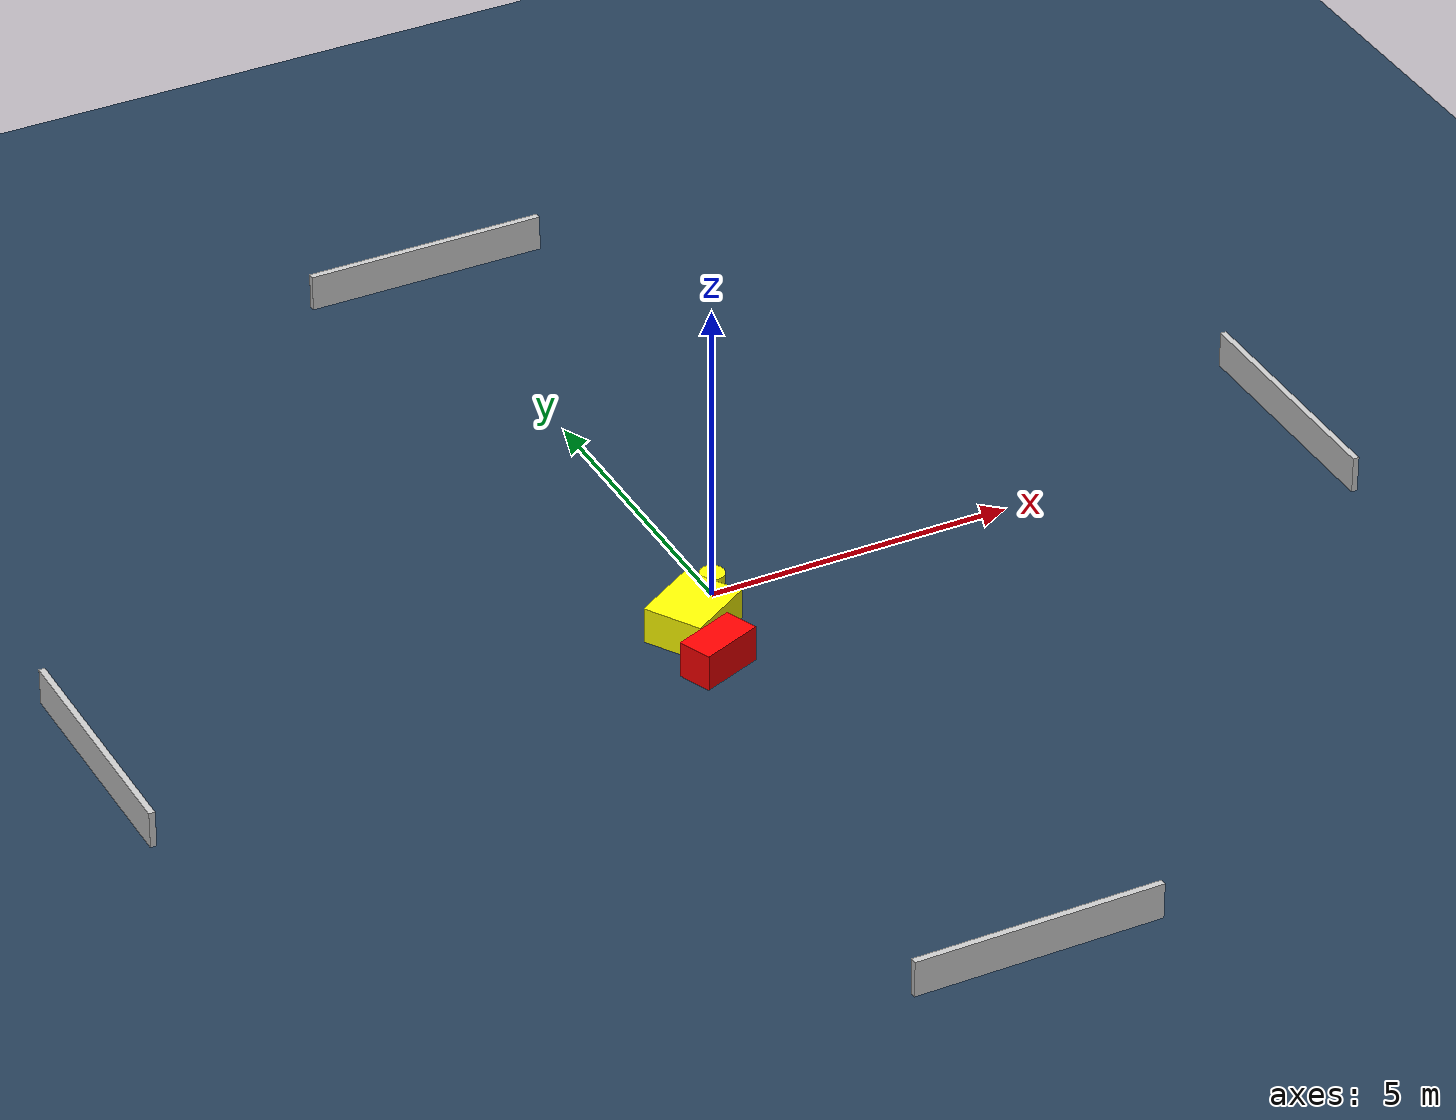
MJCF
<?xml version="1.0" ?>
<mujoco model="generated_environment">
  <option timestep="0.01" integrator="RK4" cone="elliptic"/>
  <default>
    <geom density="1"/>
  </default>
  <asset>
    <texture builtin="gradient" height="3072" name="skybox" rgb1="0.3 0.5 0.7" rgb2="0 0 0" type="skybox" width="512"/>
    <texture builtin="checker" height="300" name="groundplane" rgb1="0.2 0.3 0.4" rgb2="0.1 0.2 0.3" type="2d" width="300"/>
    <material name="groundplane" reflectance="0.2" texrepeat="5 5" texture="groundplane"/>
  </asset>
  <worldbody>
    <light dir="0 0 -1" directional="true" pos="0 0 1.5"/>
    <geom condim="3" friction="0.5 0.005 0.001" material="groundplane" name="floor" pos="0 0 0" size="0 0 0.05" type="plane"/>
    <body name="walls">
      <geom name="wall_1" condim="4" pos="-10.0 0.0 0.3" rgba="0.800000011920929 0.800000011920929 0.800000011920929 1.0" size="0.05 2.0 0.3" type="box"/>
      <geom name="wall_2" condim="4" pos="10.0 0.0 0.3" rgba="0.800000011920929 0.800000011920929 0.800000011920929 1.0" size="0.05 2.0 0.3" type="box"/>
      <geom name="wall_3" condim="4" pos="0.0 -10.0 0.3" rgba="0.800000011920929 0.800000011920929 0.800000011920929 1.0" size="2.0 0.05 0.3" type="box"/>
      <geom name="wall_4" condim="4" pos="0.0 10.0 0.3" rgba="0.800000011920929 0.800000011920929 0.800000011920929 1.0" size="2.0 0.05 0.3" type="box"/>
    </body>
    <body name="robot">
      <joint name="joint_x" type="slide" pos="0 0 0" axis="1 0 0"/>
      <joint name="joint_y" type="slide" pos="0 0 0" axis="0 1 0"/>
      <geom name="robot" type="cylinder" pos="0.0 0.0 0.2" size="0.2 0.2 0.0" mass="5.0" friction="1.0 0.005 0.0001" condim="4" rgba="1.0 1.0 0.0 1.0"/>
    </body>
    <body name="obstacle_1_movable">
      <geom name="obstacle_1_movable" condim="4" pos="-0.708817075211912 -0.7538682772428186 0.3" euler="0 0 211.34034560151755" friction="0.0 0.005 0.001" rgba="1.0 1.0 0.0 1.0" size="0.5869437789665474 0.49178196095915855 0.3" type="box" mass="0.1"/>
      <joint type="free"/>
    </body>
    <body name="obstacle_2_static">
      <geom name="obstacle_2_static" condim="4" pos="-0.7948039693322809 -1.737475807353461 0.3" euler="0 0 201.29503590993104" friction="0.0 0.005 0.001" rgba="1.0 0.0 0.0 1.0" size="0.5248189946243029 0.28166145023489964 0.3" type="box"/>
    </body>
  </worldbody>
  <actuator>
    <motor name="actuator_x" joint="joint_x" gear="1" ctrlrange="-1 1"/>
    <motor name="actuator_y" joint="joint_y" gear="1" ctrlrange="-1 1"/>
  </actuator>
</mujoco>
